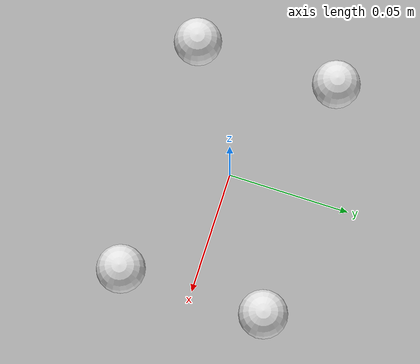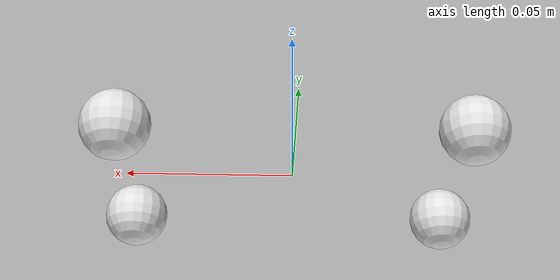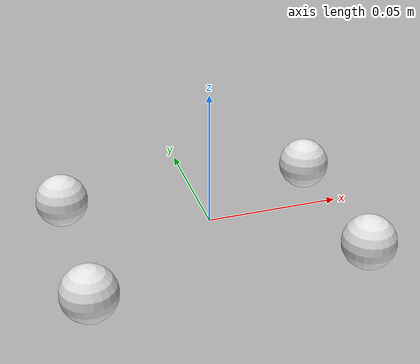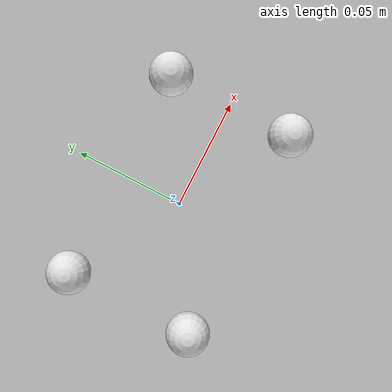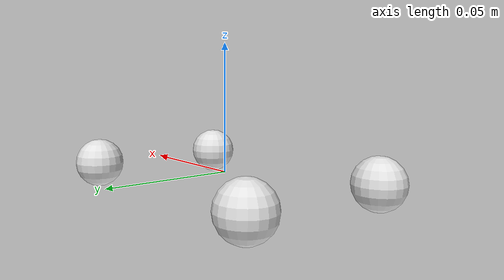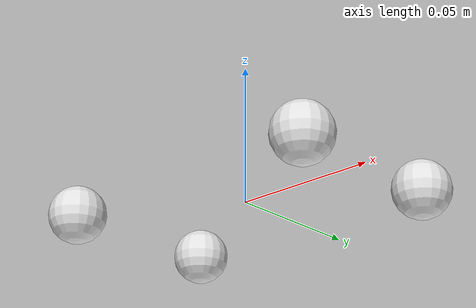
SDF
<?xml version="1.0"?>
<sdf version="1.7">

  <!-- world->ghost_body_y->ghost_body_z_sphere-->
  <model name="suction_cups">
    <!-- The model for a solid box of uniform density. -->
    <link name="cups">
      <inertial>
        <mass>0.01</mass>
        <inertia>
          <ixx>0.0001</ixx>
          <ixy>0</ixy>
          <ixz>0</ixz>
          <iyy>0.0001</iyy>
          <iyz>0</iyz>
          <izz>0.0001</izz>
        </inertia>
      </inertial>

      <visual name="visual_1">
        <pose> 0.05 0.03 0 0 0 0</pose>
        <geometry>
          <sphere>
            <radius>0.01</radius>
          </sphere>
        </geometry>
        <material>
          <diffuse>0.9 0.9 0.9 1.0</diffuse>
        </material>
      </visual>

      <collision name="collision_1">
        <pose> 0.05 0.03 0 0 0 0</pose>
        <geometry>
          <sphere>
            <radius>0.01</radius>
          </sphere>
        </geometry>
        <surface>
          <friction>
            <ode>
              <mu>2.0</mu>
              <mu2>2.0</mu2>
            </ode>
          </friction>
        </surface>
      </collision>

      <visual name="visual_2">
        <pose> -0.05 0.03 0 0 0 0</pose>
        <geometry>
          <sphere>
            <radius>0.01</radius>
          </sphere>
        </geometry>
        <material>
          <diffuse>0.9 0.9 0.9 1.0</diffuse>
        </material>
      </visual>

      <collision name="collision_2">
        <pose> -0.05 0.03 0 0 0 0</pose>
        <geometry>
          <sphere>
            <radius>0.01</radius>
          </sphere>
        </geometry>
        <surface>
          <friction>
            <ode>
              <mu>2.0</mu>
              <mu2>2.0</mu2>
            </ode>
          </friction>
        </surface>
      </collision>

      <visual name="visual_3">
        <pose> -0.05 -0.03 0 0 0 0</pose>
        <geometry>
          <sphere>
            <radius>0.01</radius>
          </sphere>
        </geometry>
        <material>
          <diffuse>0.9 0.9 0.9 1.0</diffuse>
        </material>
      </visual>

      <collision name="collision_3">
        <pose> -0.05 -0.03 0 0 0 0</pose>
        <geometry>
          <sphere>
            <radius>0.01</radius>
          </sphere>
        </geometry>
        <surface>
          <friction>
            <ode>
              <mu>2.0</mu>
              <mu2>2.0</mu2>
            </ode>
          </friction>
        </surface>
      </collision>

      <visual name="visual_4">
        <pose> 0.05 -0.03 0 0 0 0</pose>
        <geometry>
          <sphere>
            <radius>0.01</radius>
          </sphere>
        </geometry>
        <material>
          <diffuse>0.9 0.9 0.9 1.0</diffuse>
        </material>
      </visual>

      <collision name="collision_4">
        <pose> 0.05 -0.03 0 0 0 0</pose>
        <geometry>
          <sphere>
            <radius>0.01</radius>
          </sphere>
        </geometry>
        <surface>
          <friction>
            <ode>
              <mu>2.0</mu>
              <mu2>2.0</mu2>
            </ode>
          </friction>
        </surface>
      </collision>
    </link>
  </model>
</sdf>
